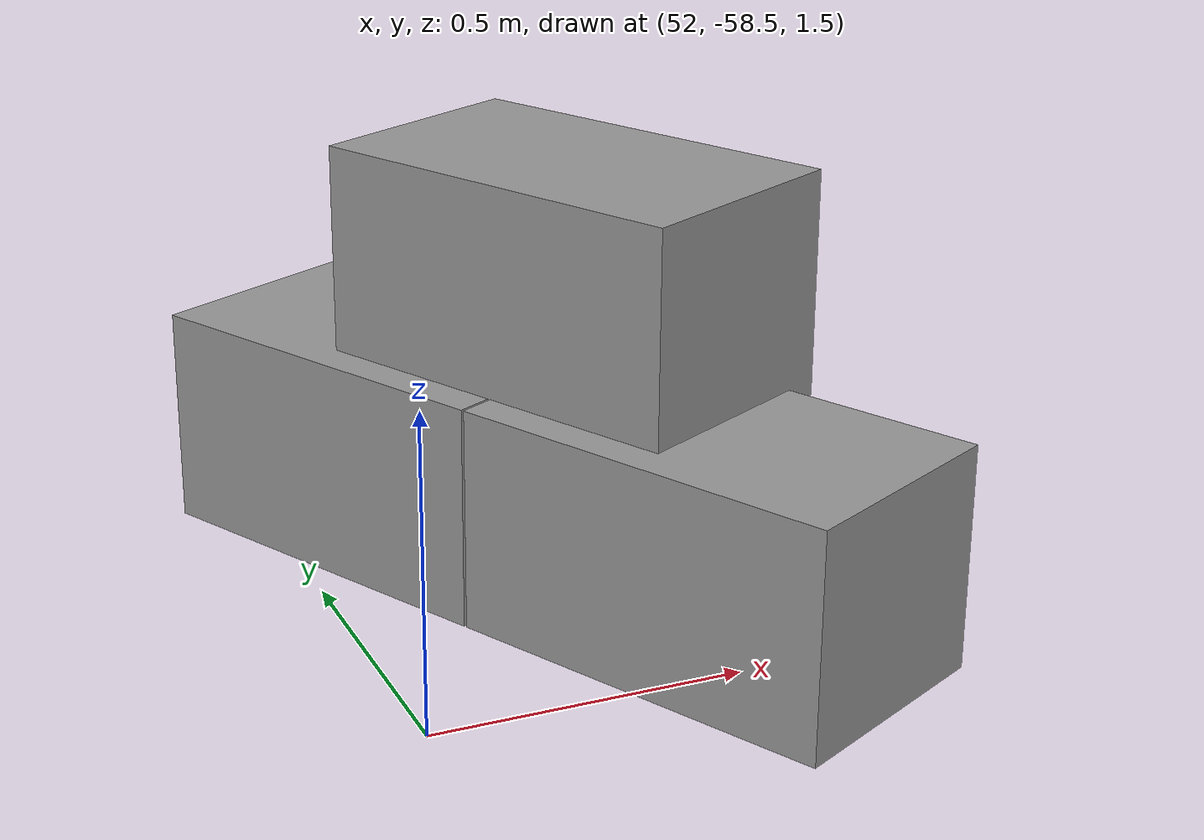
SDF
<sdf version="1.7">
 <world name="default">
  <model name="ground_plane">
   <static>1</static>
   <link name="link">
    <collision name="collision">
     <geometry><plane><normal>0 0 1</normal><size>100 100</size></plane></geometry>
     <surface>
      <contact><collide_bitmask>65535</collide_bitmask></contact>
      <friction><ode><mu>100</mu><mu2>50</mu2></ode></friction>
     </surface>
    </collision>
    <visual name="visual">
     <cast_shadows>0</cast_shadows>
     <geometry><plane><normal>0 0 1</normal><size>100 100</size></plane></geometry>
     <material>
      <script><uri>file://media/materials/scripts/gazebo.material</uri><name>Gazebo/Grey</name></script>
     </material>
    </visual>
   </link>
  </model>
  <model name="Add_Box_clone_clone_3_clone_17">
   <link name="link">
    <inertial>
     <mass>1</mass>
     <inertia>
      <ixx>0.166667</ixx>
      <ixy>0</ixy>
      <ixz>0</ixz>
      <iyy>0.166667</iyy>
      <iyz>0</iyz>
      <izz>0.166667</izz>
     </inertia>
    </inertial>
    <kinematic>1</kinematic>
    <gravity>0</gravity>
    <visual name="visual">
     <geometry><box><size>0.686 0.406 0.381</size></box></geometry>
     <material>
      <script><name>Gazebo/Grey</name><uri>file://media/materials/scripts/gazebo.material</uri></script>
      <shader type="pixel"><normal_map>__default__</normal_map></shader>
      <ambient>0.3 0.3 0.3 1</ambient>
      <diffuse>0.7 0.7 0.7 1</diffuse>
      <specular>0.01 0.01 0.01 1</specular>
      <emissive>0 0 0 1</emissive>
     </material>
    </visual>
    <collision name="collision">
     <geometry><box><size>1 1 1</size></box></geometry>
     <surface>
      <friction>
       <ode><mu>1</mu><mu2>1</mu2><fdir1>0 0 0</fdir1><slip1>0</slip1><slip2>0</slip2></ode>
       <torsional>
        <coefficient>1</coefficient>
        <patch_radius>0</patch_radius>
        <surface_radius>0</surface_radius>
        <use_patch_radius>1</use_patch_radius>
        <ode><slip>0</slip></ode>
       </torsional>
      </friction>
      <bounce><restitution_coefficient>0</restitution_coefficient><threshold>1e+06</threshold></bounce>
      <contact>
       <collide_without_contact>0</collide_without_contact>
       <collide_without_contact_bitmask>1</collide_without_contact_bitmask>
       <collide_bitmask>1</collide_bitmask>
       <ode>
        <soft_cfm>0</soft_cfm>
        <soft_erp>0.2</soft_erp>
        <kp>1e+13</kp>
        <kd>1</kd>
        <max_vel>0.01</max_vel>
        <min_depth>0</min_depth>
       </ode>
       <bullet>
        <split_impulse>1</split_impulse>
        <split_impulse_penetration_threshold>-0.01</split_impulse_penetration_threshold>
        <soft_cfm>0</soft_cfm>
        <soft_erp>0.2</soft_erp>
        <kp>1e+13</kp>
        <kd>1</kd>
       </bullet>
      </contact>
     </surface>
    </collision>
   </link>
   <link name="link_clone">
    <inertial>
     <mass>1</mass>
     <inertia>
      <ixx>0.166667</ixx>
      <ixy>0</ixy>
      <ixz>0</ixz>
      <iyy>0.166667</iyy>
      <iyz>0</iyz>
      <izz>0.166667</izz>
     </inertia>
    </inertial>
    <pose>-0.343354 -0.063316 0.354303 1e-05 -0 0</pose>
    <gravity>0</gravity>
    <visual name="visual">
     <geometry><box><size>0.686 0.406 0.381</size></box></geometry>
     <material>
      <script><name>Gazebo/Grey</name><uri>file://media/materials/scripts/gazebo.material</uri></script>
      <shader type="pixel"><normal_map>__default__</normal_map></shader>
      <ambient>0.3 0.3 0.3 1</ambient>
      <diffuse>0.7 0.7 0.7 1</diffuse>
      <specular>0.01 0.01 0.01 1</specular>
      <emissive>0 0 0 1</emissive>
     </material>
    </visual>
    <collision name="collision">
     <geometry><box><size>1 1 1</size></box></geometry>
     <surface>
      <friction>
       <ode><mu>1</mu><mu2>1</mu2><fdir1>0 0 0</fdir1><slip1>0</slip1><slip2>0</slip2></ode>
       <torsional>
        <coefficient>1</coefficient>
        <patch_radius>0</patch_radius>
        <surface_radius>0</surface_radius>
        <use_patch_radius>1</use_patch_radius>
        <ode><slip>0</slip></ode>
       </torsional>
      </friction>
      <bounce><restitution_coefficient>0</restitution_coefficient><threshold>1e+06</threshold></bounce>
      <contact>
       <collide_without_contact>0</collide_without_contact>
       <collide_without_contact_bitmask>1</collide_without_contact_bitmask>
       <collide_bitmask>1</collide_bitmask>
       <ode>
        <soft_cfm>0</soft_cfm>
        <soft_erp>0.2</soft_erp>
        <kp>1e+13</kp>
        <kd>1</kd>
        <max_vel>0.01</max_vel>
        <min_depth>0</min_depth>
       </ode>
       <bullet>
        <split_impulse>1</split_impulse>
        <split_impulse_penetration_threshold>-0.01</split_impulse_penetration_threshold>
        <soft_cfm>0</soft_cfm>
        <soft_erp>0.2</soft_erp>
        <kp>1e+13</kp>
        <kd>1</kd>
       </bullet>
      </contact>
     </surface>
    </collision>
   </link>
   <link name="link_clone_clone">
    <inertial>
     <mass>1</mass>
     <inertia>
      <ixx>0.166667</ixx>
      <ixy>0</ixy>
      <ixz>0</ixz>
      <iyy>0.166667</iyy>
      <iyz>0</iyz>
      <izz>0.166667</izz>
     </inertia>
    </inertial>
    <pose>-0.690786 -0.000183 -1e-05 2e-05 -0 0</pose>
    <gravity>0</gravity>
    <visual name="visual">
     <geometry><box><size>0.686 0.406 0.381</size></box></geometry>
     <material>
      <script><name>Gazebo/Grey</name><uri>file://media/materials/scripts/gazebo.material</uri></script>
      <shader type="pixel"><normal_map>__default__</normal_map></shader>
      <ambient>0.3 0.3 0.3 1</ambient>
      <diffuse>0.7 0.7 0.7 1</diffuse>
      <specular>0.01 0.01 0.01 1</specular>
      <emissive>0 0 0 1</emissive>
     </material>
    </visual>
    <collision name="collision">
     <geometry><box><size>1 1 1</size></box></geometry>
     <surface>
      <friction>
       <ode><mu>1</mu><mu2>1</mu2><fdir1>0 0 0</fdir1><slip1>0</slip1><slip2>0</slip2></ode>
       <torsional>
        <coefficient>1</coefficient>
        <patch_radius>0</patch_radius>
        <surface_radius>0</surface_radius>
        <use_patch_radius>1</use_patch_radius>
        <ode><slip>0</slip></ode>
       </torsional>
      </friction>
      <bounce><restitution_coefficient>0</restitution_coefficient><threshold>1e+06</threshold></bounce>
      <contact>
       <collide_without_contact>0</collide_without_contact>
       <collide_without_contact_bitmask>1</collide_without_contact_bitmask>
       <collide_bitmask>1</collide_bitmask>
       <ode>
        <soft_cfm>0</soft_cfm>
        <soft_erp>0.2</soft_erp>
        <kp>1e+13</kp>
        <kd>1</kd>
        <max_vel>0.01</max_vel>
        <min_depth>0</min_depth>
       </ode>
       <bullet>
        <split_impulse>1</split_impulse>
        <split_impulse_penetration_threshold>-0.01</split_impulse_penetration_threshold>
        <soft_cfm>0</soft_cfm>
        <soft_erp>0.2</soft_erp>
        <kp>1e+13</kp>
        <kd>1</kd>
       </bullet>
      </contact>
     </surface>
    </collision>
   </link>
   <static>0</static>
   <pose>52.244 -57.6675 1.61518 0 -0 2.04203</pose>
  </model>
 </world>
</sdf>
